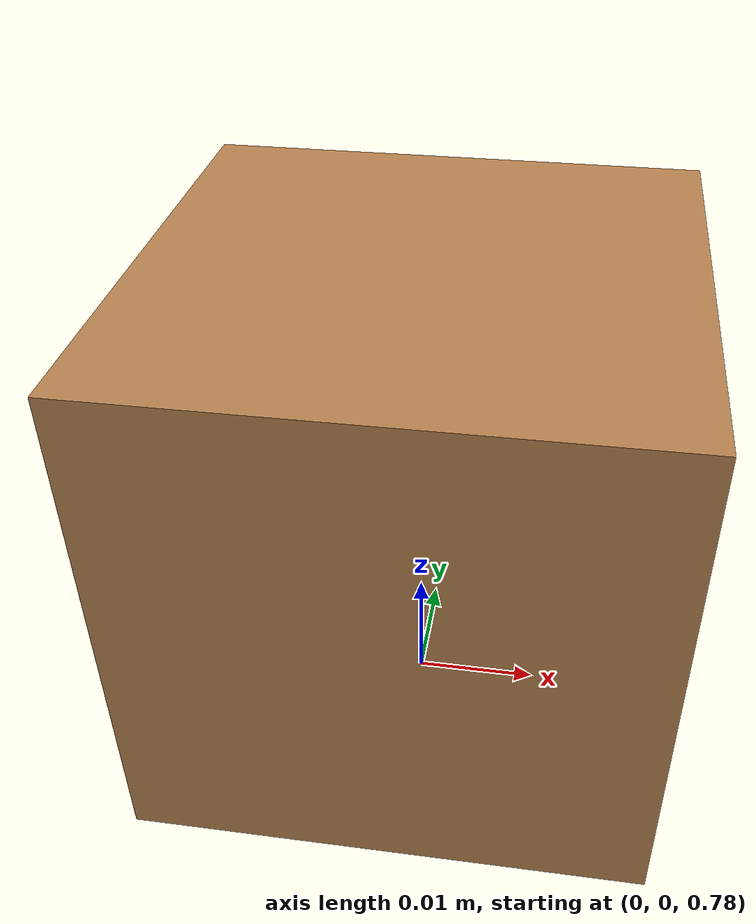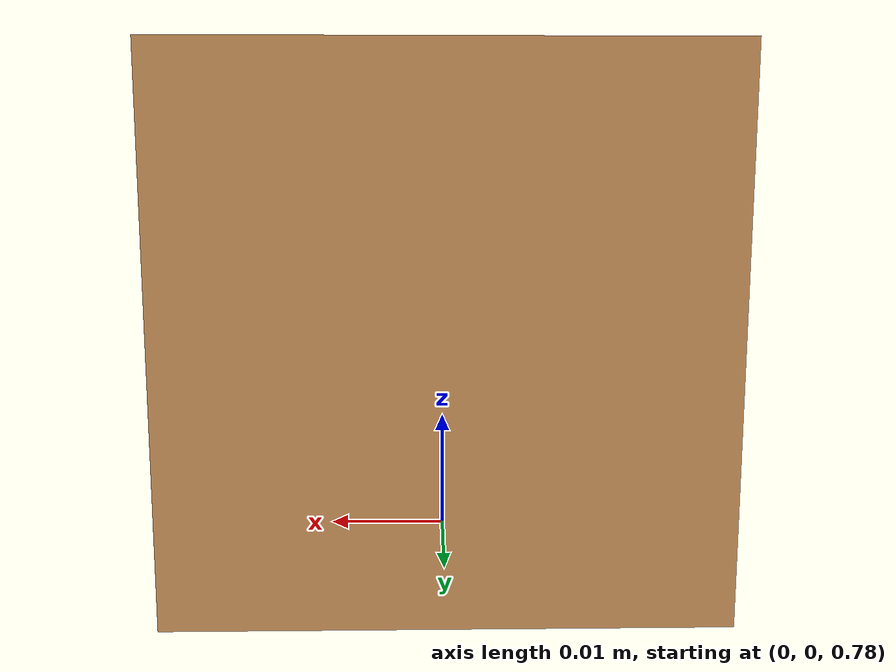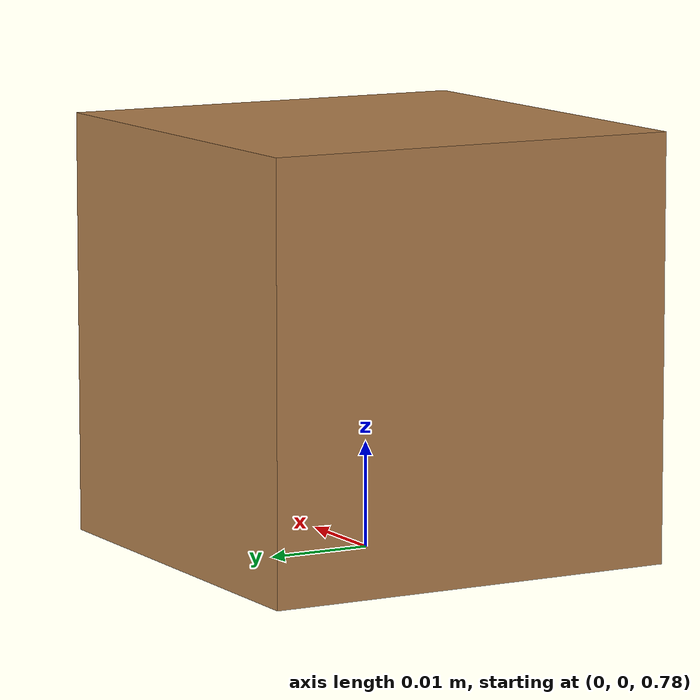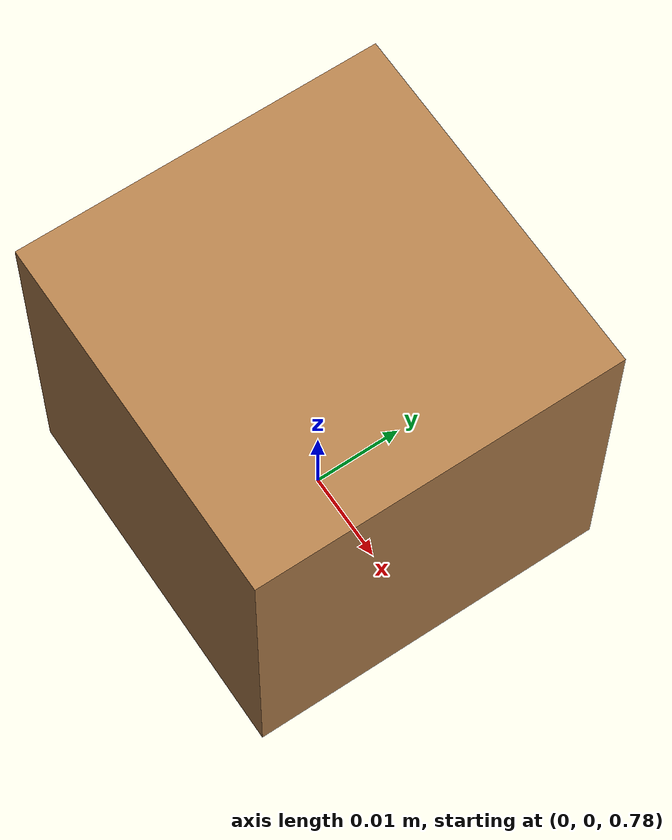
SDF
<?xml version="1.0" ?>
<sdf version="1.6">
  <model name="objeto_teste">
    <pose>0 0 0.8 0 0 0</pose>
    <link name="link">
      <inertial>
        <mass>0.0416</mass>
        <inertia>
          <ixx>1.1093e-5</ixx>
          <iyy>1.1093e-5</iyy>
          <izz>1.1093e-5</izz>
          <ixy>0</ixy>
          <ixz>0</ixz>
          <iyz>0</iyz>
        </inertia>
      </inertial>
      <collision name="collision">
        <geometry>
          <box>
            <size>0.04 0.04 0.04</size>
          </box>
        </geometry>
        <surface>
          <friction>
            <ode>
              <mu>0.9</mu>
              <mu2>0.9</mu2>
            </ode>
          </friction>
          <contact>
            <ode>
              <kp>100000</kp>
              <kd>1.0</kd>
            </ode>
          </contact>
        </surface>
      </collision>
      <visual name="visual">
        <geometry>
          <box>
            <size>0.04 0.04 0.04</size>
          </box>
        </geometry>
        <material>
          <ambient>0.6 0.4 0.2 1</ambient>
          <diffuse>0.7 0.5 0.3 1</diffuse>
        </material>
      </visual>
    </link>
  </model>
</sdf>
